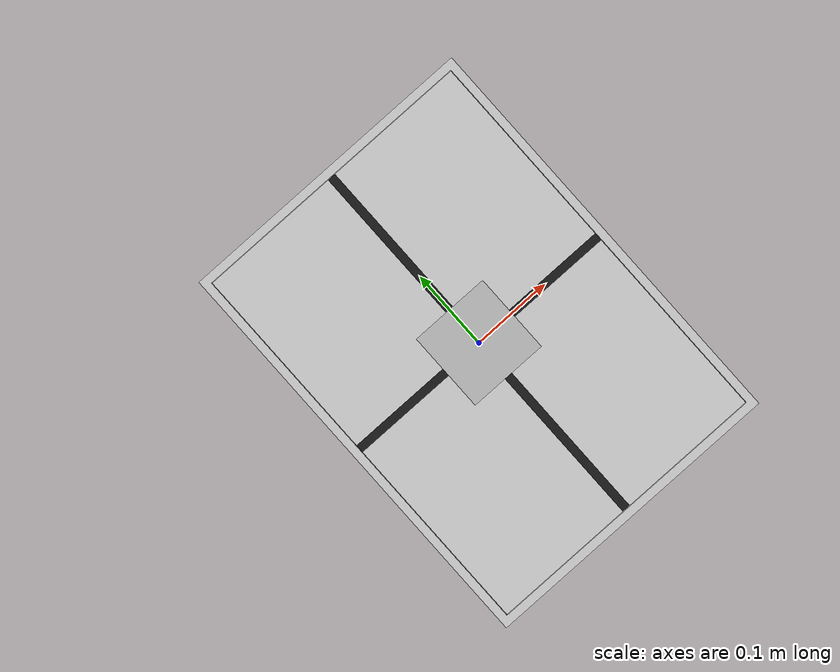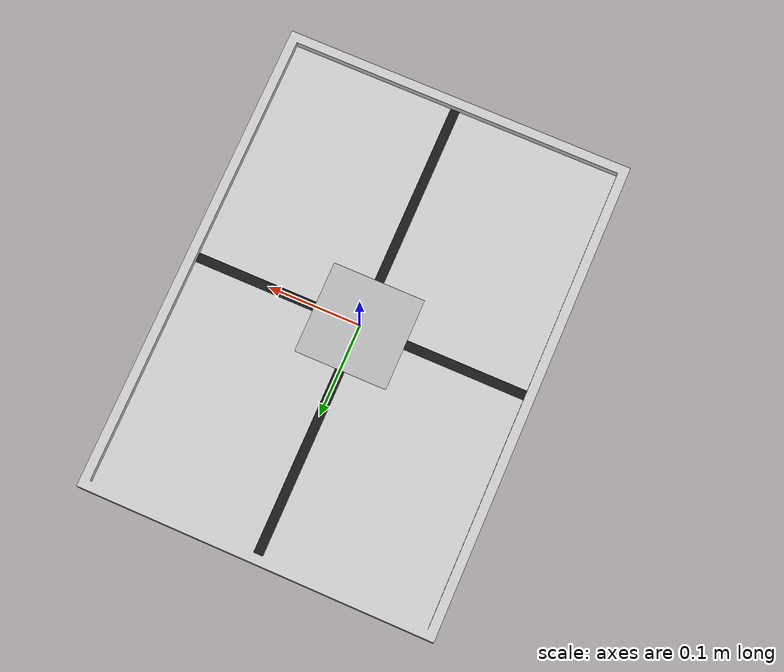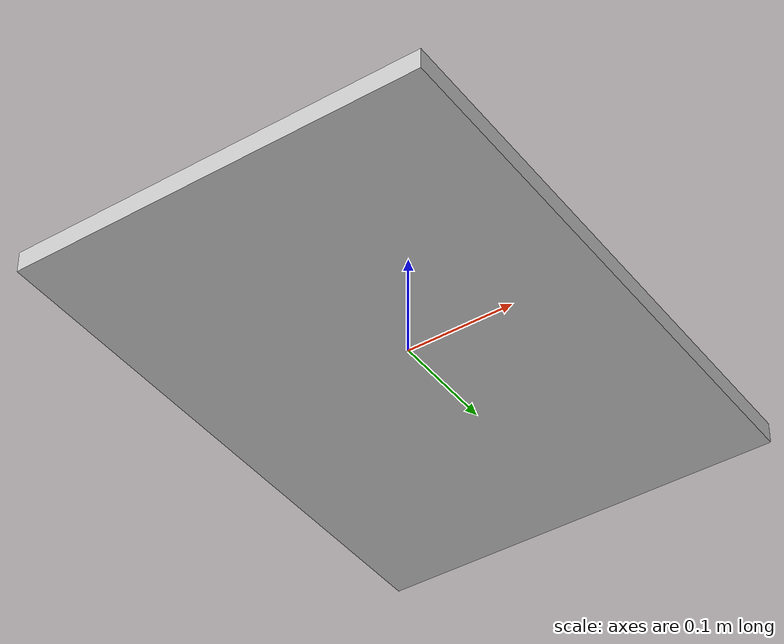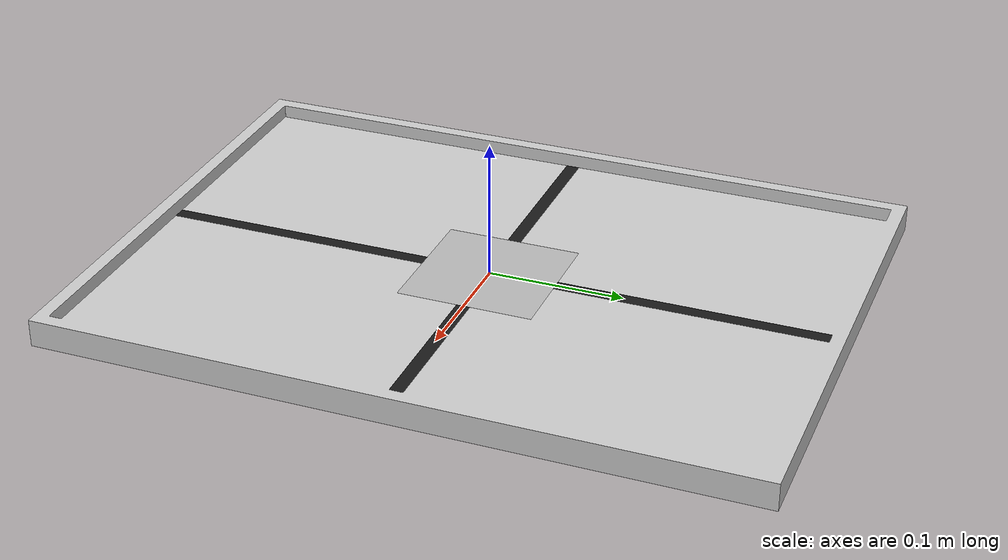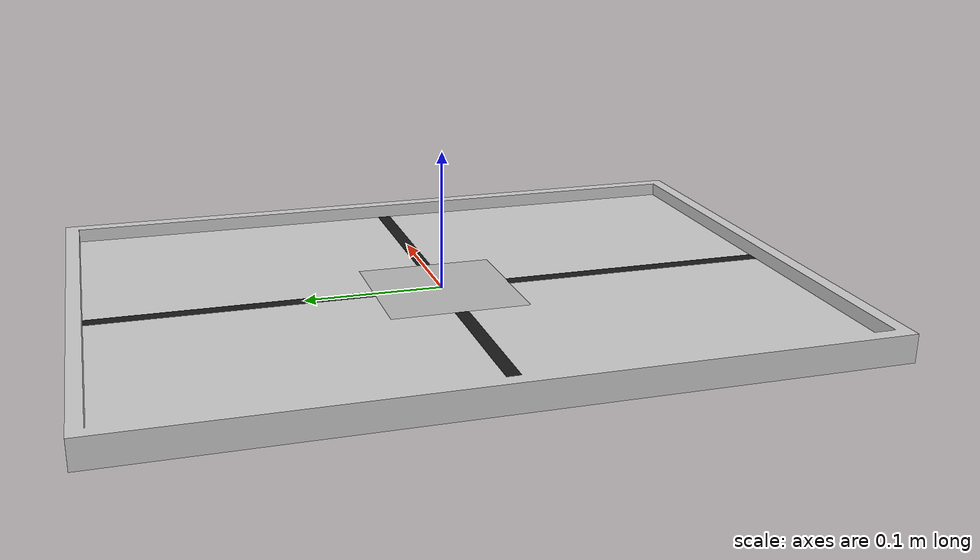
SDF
<?xml version="1.0" ?>
<sdf version="1.6">
  <model name="kit_tray">
    <static>false</static>
    <allow_auto_disable>false</allow_auto_disable>

    <link name="kit_tray_link">
      <inertial>
        <pose>0 0 -0.005 0 0 0</pose>

        <mass>0.5</mass>

        <ixx>0.05078</ixx>
        <ixy>0</ixy>
        <ixz>0</ixz>
        <iyy>0.02713</iyy>
        <iyz>0</iyz>
        <izz>0.07787</izz>
      </inertial>

      <visual name="base">
        <geometry>
          <mesh>
            <uri>model://kit_tray/meshes/tray_base.stl</uri>
          </mesh>
        </geometry>
        <material>
          <ambient>0.8 0.8 0.8 1.0</ambient>
          <diffuse>0.8 0.8 0.8 1.0</diffuse>
        </material>
      </visual>

      <visual name="tape">
        <geometry>
          <mesh>
            <uri>model://kit_tray/meshes/tape.stl</uri>
          </mesh>
        </geometry>
        <material>
          <ambient>0.1 0.1 0.1 1.0</ambient>
          <diffuse>0.1 0.1 0.1 1.0</diffuse>
        </material>
      </visual>

      <visual name="marker">
        <geometry>
          <mesh>
            <uri>model://kit_tray/meshes/markers/marker_04.dae</uri>
          </mesh>
        </geometry>
      </visual>

      <collision name="collision">
        <pose>0 0 -0.005 0 0 0</pose>
        <geometry>
          <box>
            <size>0.38 0.52 0.01</size>
          </box>
        </geometry>
        <surface>
          <contact>
            <ode>
              <max_vel>0.0</max_vel>
              <min_depth>0.001</min_depth>
            </ode>
          </contact>
          <friction>
            <ode>
              <mu>1000</mu>
              <mu2>1000</mu2>
            </ode>
          </friction>
        </surface>

      </collision>
    </link>
  </model>
</sdf>
